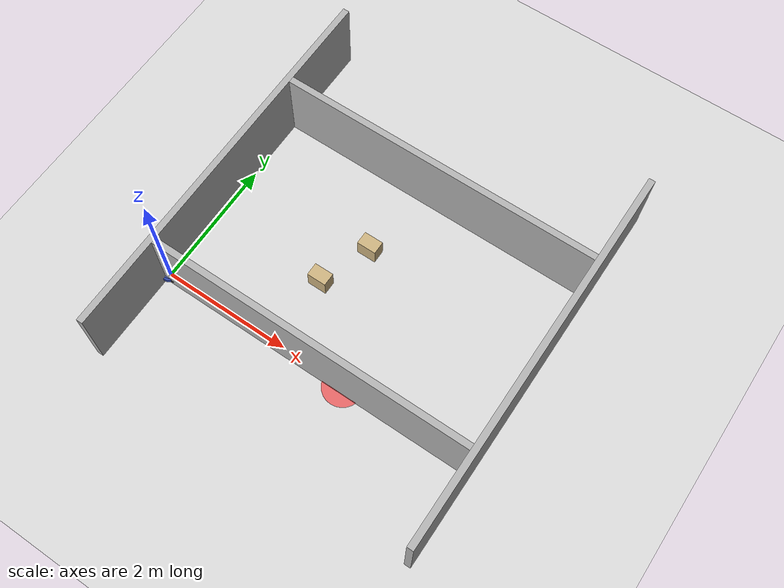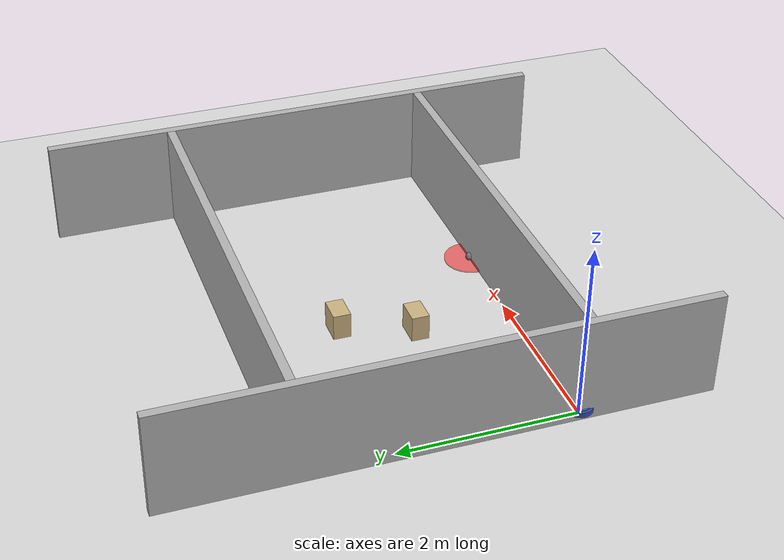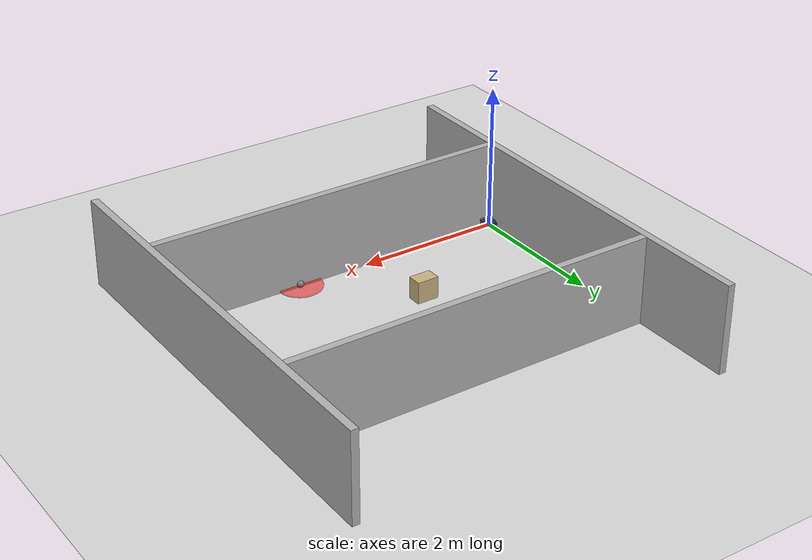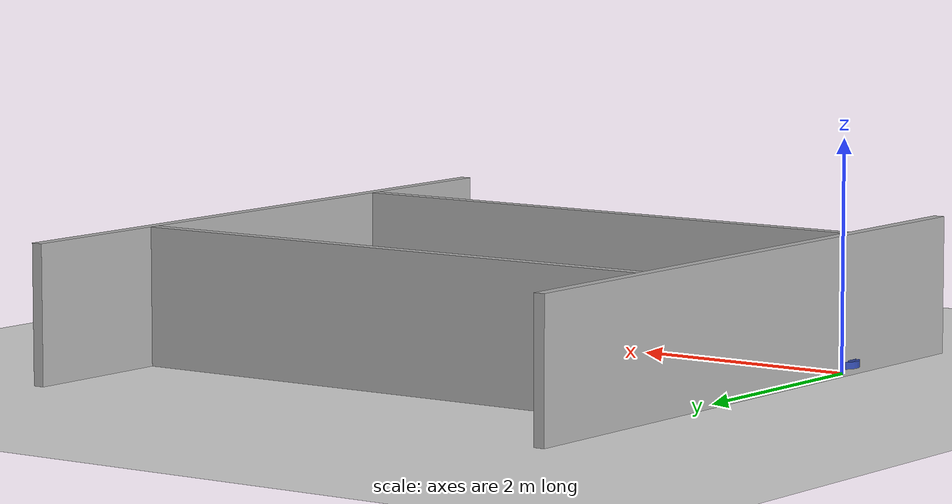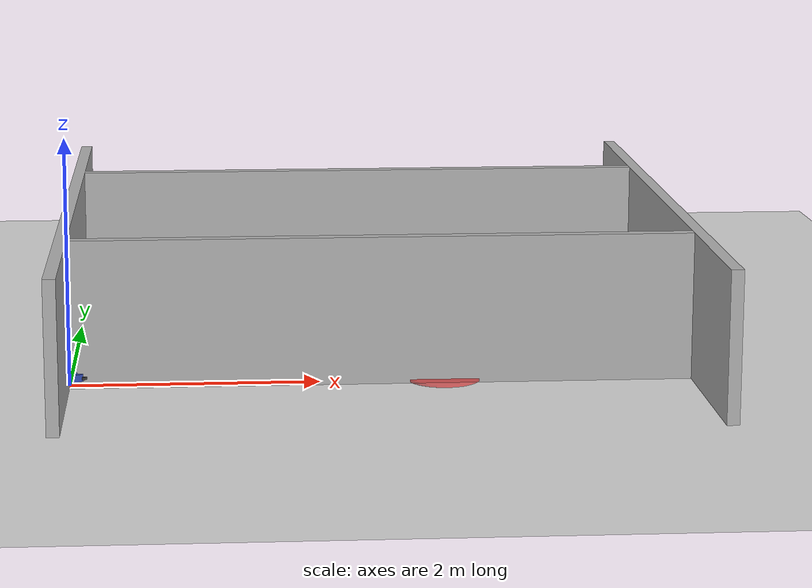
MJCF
<mujoco model="lab_narrow_gap">
  <include file="../assets/lekiwi_base.xml"/>

  <worldbody>
    <!-- Room: 5m × 6m -->
    <geom name="wall_north" type="box" size="2.5 0.05 0.6" pos="2.5 3.05 0.6" rgba="0.7 0.7 0.7 1"/>
    <geom name="wall_south" type="box" size="2.5 0.05 0.6" pos="2.5 -0.05 0.6" rgba="0.7 0.7 0.7 1"/>
    <geom name="wall_east"  type="box" size="0.05 3.0 0.6" pos="5.05 1.5 0.6" rgba="0.7 0.7 0.7 1"/>
    <geom name="wall_west"  type="box" size="0.05 3.0 0.6" pos="-0.05 1.5 0.6" rgba="0.7 0.7 0.7 1"/>

    <!-- Two tables forming a 0.65m narrow gap -->
    <!-- Left table -->
    <body name="table_left" pos="2.0 0.85 0.375">
      <include file="../assets/table.xml"/>
    </body>
    <!-- Right table -->
    <body name="table_right" pos="2.0 2.15 0.375">
      <include file="../assets/table.xml"/>
    </body>

    <!-- Boxes flanking the gap -->
    <body name="box_left" pos="1.85 1.1 0.15">
      <geom name="bl" type="box" size="0.15 0.1 0.15" rgba="0.8 0.7 0.5 1" mass="1.0"/>
      <freejoint/>
    </body>
    <body name="box_right" pos="2.15 1.9 0.15">
      <geom name="br" type="box" size="0.15 0.1 0.15" rgba="0.8 0.7 0.5 1" mass="1.0"/>
      <freejoint/>
    </body>
  </worldbody>
</mujoco>

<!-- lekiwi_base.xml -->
<mujoco model="lekiwi_base">
  <compiler angle="degree" meshdir="assets"/>

  <option timestep="0.005" gravity="0 0 -9.81">
    <flag contact="enable" gravity="enable"/>
  </option>

  <default>
    <geom type="cylinder" density="500" friction="0.6 0.3 0.3" condim="3"/>
    <joint type="hinge" armature="0.001" damping="0.01"/>
    <default class="floor">
      <geom type="plane" size="10 10 0.1" rgba="0.85 0.85 0.85 1"/>
    </default>
    <default class="wall">
      <geom type="box" rgba="0.7 0.7 0.7 1" density="1000"/>
    </default>
  </default>

  <!-- ====== World floor ====== -->
  <worldbody>
    <geom class="floor" pos="0 0 0"/>
    <light directional="true" pos="4 0 8" dir="0 0 -1" diffuse="0.9 0.9 0.9"/>
    <light directional="true" pos="-4 4 6" dir="0 0 -1" diffuse="0.3 0.3 0.3"/>

    <!-- ====== LeKiwi omnidirectional base ====== -->
    <body name="lekiwi_base" pos="0 0 0.06">
      <!-- Chassis: flat cylinder, radius 0.15m, height 0.06m -->
      <geom name="chassis_body" type="cylinder" size="0.15 0.03"
            pos="0 0 0.03" rgba="0.2 0.3 0.7 1" mass="2.5"/>
      <!-- Top plate marker -->
      <geom name="chassis_top" type="cylinder" size="0.12 0.005"
            pos="0 0 0.065" rgba="0.3 0.4 0.8 1" mass="0.1"/>

      <!-- Front direction indicator -->
      <geom name="front_marker" type="box" size="0.03 0.01 0.01"
            pos="0.13 0 0.07" rgba="1 0.5 0 1" mass="0.01"/>

      <!-- 3 omniwheels at 150°, -90°, 30° from forward -->
      <!-- Wheel 1: left-rear (150° / 5π/6) -->
      <body name="wheel_1" pos="0.108 -0.0625 0.025">
        <joint name="wheel_1_joint" type="hinge" axis="0 1 0"/>
        <geom name="wheel_1_geom" type="cylinder" size="0.05 0.012"
              pos="0 0 0" rgba="0.2 0.2 0.2 1" mass="0.08"/>
        <geom name="roller_1" type="sphere" size="0.008" pos="0.05 0 0"
              rgba="0.5 0.5 0.5 1" mass="0.005"/>
      </body>

      <!-- Wheel 2: back (-90° / -π/2) -->
      <body name="wheel_2" pos="0 0.125 0.025">
        <joint name="wheel_2_joint" type="hinge" axis="1 0 0"/>
        <geom name="wheel_2_geom" type="cylinder" size="0.05 0.012"
              pos="0 0 0" rgba="0.2 0.2 0.2 1" mass="0.08"/>
        <geom name="roller_2" type="sphere" size="0.008" pos="0.05 0 0"
              rgba="0.5 0.5 0.5 1" mass="0.005"/>
      </body>

      <!-- Wheel 3: right-front (30° / π/6) -->
      <body name="wheel_3" pos="0.108 0.0625 0.025">
        <joint name="wheel_3_joint" type="hinge" axis="-1 0 0"/>
        <geom name="wheel_3_geom" type="cylinder" size="0.05 0.012"
              pos="0 0 0" rgba="0.2 0.2 0.2 1" mass="0.08"/>
        <geom name="roller_3" type="sphere" size="0.008" pos="0.05 0 0"
              rgba="0.5 0.5 0.5 1" mass="0.005"/>
      </body>

      <!-- D435i camera mount point (referenced by d435i_mount.xml) -->
      <site name="camera_mount" pos="0.10 0 0.08" euler="0 -15 0" size="0.01"/>
    </body>

    <!-- ====== Goal marker ====== -->
    <body name="goal_marker" pos="3 0 0.02" mocap="true">
      <geom name="goal_geom" type="cylinder" size="0.3 0.01"
            rgba="1 0 0 0.5" mass="0"/>
      <site name="goal_site" pos="0 0 0.02" size="0.05"/>
    </body>
  </worldbody>

  <!-- ====== Actuators ====== -->
  <actuator>
    <motor name="motor_1" joint="wheel_1_joint" ctrlrange="-30 30" gear="1"/>
    <motor name="motor_2" joint="wheel_2_joint" ctrlrange="-30 30" gear="1"/>
    <motor name="motor_3" joint="wheel_3_joint" ctrlrange="-30 30" gear="1"/>
  </actuator>

  <!-- ====== Sensors ====== -->
  <sensor>
    <!-- Robot position & orientation -->
    <framepos name="robot_pos" objtype="body" objname="lekiwi_base"/>
    <framequat name="robot_quat" objtype="body" objname="lekiwi_base"/>
    <framelinvel name="robot_linvel" objtype="body" objname="lekiwi_base"/>
    <frameangvel name="robot_angvel" objtype="body" objname="lekiwi_base"/>
    <!-- Goal relative position -->
    <framepos name="goal_pos" objtype="body" objname="goal_marker"/>
    <!-- Wheel velocities -->
    <actuatorfrc name="actuator_force_1" actuator="motor_1"/>
    <actuatorfrc name="actuator_force_2" actuator="motor_2"/>
    <actuatorfrc name="actuator_force_3" actuator="motor_3"/>
  </sensor>
</mujoco>

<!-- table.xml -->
<mujoco model="table">
  <!-- Standard lab table: 1.2m × 0.6m × 0.75m -->
  <worldbody>
    <body name="table" pos="0 0 0.375">
      <!-- Tabletop -->
      <geom name="table_top" type="box" size="0.6 0.3 0.025" pos="0 0 0.375"
            rgba="0.75 0.65 0.5 1" mass="15"/>
      <!-- Legs -->
      <geom name="leg_1" type="cylinder" size="0.025 0.36" pos="0.55 0.25 0.01" rgba="0.5 0.4 0.3 1" mass="2"/>
      <geom name="leg_2" type="cylinder" size="0.025 0.36" pos="-0.55 0.25 0.01" rgba="0.5 0.4 0.3 1" mass="2"/>
      <geom name="leg_3" type="cylinder" size="0.025 0.36" pos="0.55 -0.25 0.01" rgba="0.5 0.4 0.3 1" mass="2"/>
      <geom name="leg_4" type="cylinder" size="0.025 0.36" pos="-0.55 -0.25 0.01" rgba="0.5 0.4 0.3 1" mass="2"/>
      <freejoint/>
    </body>
  </worldbody>
</mujoco>
